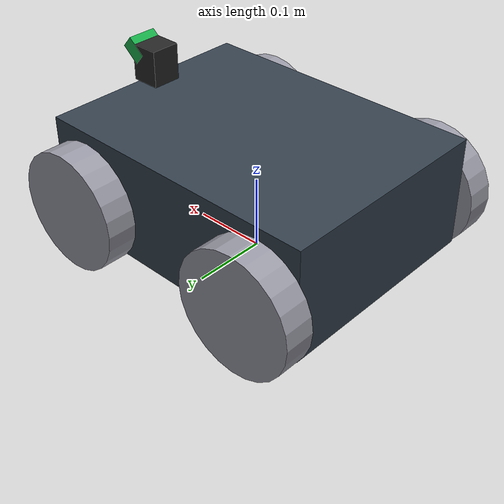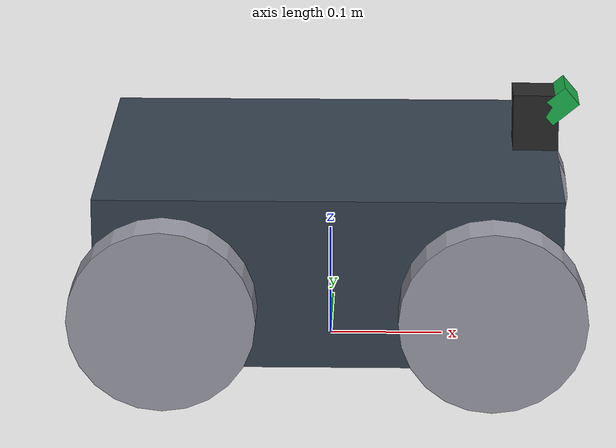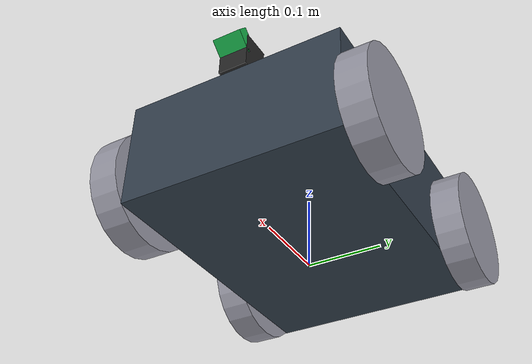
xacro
<?xml version="1.0"?>
<robot xmlns:xacro="http://www.ros.org/wiki/xacro" name="railway_rover">

  <!-- ==================== Materials ==================== -->
  <material name="chassis_color">
    <color rgba="0.2 0.25 0.3 1.0"/>
  </material>

  <material name="wheel_color">
    <color rgba="0.6 0.6 0.65 1.0"/>
  </material>

  <material name="camera_color">
    <color rgba="0.1 0.7 0.3 1.0"/>
  </material>

  <material name="mount_color">
    <color rgba="0.15 0.15 0.15 1.0"/>
  </material>

  <!-- ==================== Base Footprint ==================== -->
  <link name="base_footprint"/>

  <!-- ==================== Base Link (Chassis) ==================== -->
  <joint name="base_joint" type="fixed">
    <parent link="base_footprint"/>
    <child link="base_link"/>
    <origin xyz="0 0 0.10" rpy="0 0 0"/>
  </joint>

  <link name="base_link">
    <visual>
      <origin xyz="0 0 0" rpy="0 0 0"/>
      <geometry>
        <box size="0.40 0.30 0.15"/>
      </geometry>
      <material name="chassis_color"/>
    </visual>
    <collision>
      <origin xyz="0 0 0" rpy="0 0 0"/>
      <geometry>
        <box size="0.40 0.30 0.15"/>
      </geometry>
    </collision>
    <inertial>
      <origin xyz="0 0 0" rpy="0 0 0"/>
      <mass value="5.0"/>
      <inertia ixx="0.0468" ixy="0.0" ixz="0.0" iyy="0.0760" iyz="0.0" izz="0.1041"/>
    </inertial>
  </link>

  <!-- ==================== Wheel Macro ==================== -->
  <xacro:macro name="wheel" params="prefix x_reflect y_reflect">
    <joint name="${prefix}_wheel_joint" type="continuous">
      <parent link="base_link"/>
      <child link="${prefix}_wheel_link"/>
      <origin xyz="${x_reflect * 0.14} ${y_reflect * 0.17} -0.02" rpy="-1.5707963 0 0"/>
      <axis xyz="0 0 1"/>
    </joint>

    <link name="${prefix}_wheel_link">
      <visual>
        <origin xyz="0 0 0" rpy="0 0 0"/>
        <geometry>
          <cylinder radius="0.08" length="0.04"/>
        </geometry>
        <material name="wheel_color"/>
      </visual>
      <collision>
        <origin xyz="0 0 0" rpy="0 0 0"/>
        <geometry>
          <cylinder radius="0.08" length="0.04"/>
        </geometry>
      </collision>
      <inertial>
        <origin xyz="0 0 0" rpy="0 0 0"/>
        <mass value="0.5"/>
        <inertia ixx="0.00086" ixy="0.0" ixz="0.0" iyy="0.00086" iyz="0.0" izz="0.0016"/>
      </inertial>
    </link>
  </xacro:macro>

  <!-- Instantiate 4 Wheels -->
  <xacro:wheel prefix="front_left" x_reflect="1" y_reflect="1"/>
  <xacro:wheel prefix="front_right" x_reflect="1" y_reflect="-1"/>
  <xacro:wheel prefix="rear_left" x_reflect="-1" y_reflect="1"/>
  <xacro:wheel prefix="rear_right" x_reflect="-1" y_reflect="-1"/>

  <!-- ==================== Camera Mount & Link ==================== -->
  <!-- Camera Mount Link (fixed to front-center top of chassis) -->
  <joint name="camera_mount_joint" type="fixed">
    <parent link="base_link"/>
    <child link="camera_mount_link"/>
    <origin xyz="0.18 0.0 0.08" rpy="0 0 0"/>
  </joint>

  <link name="camera_mount_link">
    <visual>
      <origin xyz="0 0 0.025" rpy="0 0 0"/>
      <geometry>
        <box size="0.04 0.04 0.05"/>
      </geometry>
      <material name="mount_color"/>
    </visual>
  </link>

  <!-- Camera Module Joint: Angled at 50 degrees relative to ground (0.872665 rad pitch downward) -->
  <joint name="camera_joint" type="fixed">
    <parent link="camera_mount_link"/>
    <child link="camera_link"/>
    <!-- Pitch angle: 50 deg downward = 0.872665 rad pitch -->
    <origin xyz="0.02 0.0 0.04" rpy="0 0.872665 0"/>
  </joint>

  <link name="camera_link">
    <visual>
      <origin xyz="0 0 0" rpy="0 0 0"/>
      <geometry>
        <box size="0.02 0.04 0.03"/>
      </geometry>
      <material name="camera_color"/>
    </visual>
  </link>

  <!-- ROS Camera Optical Frame standard (X-Right, Y-Down, Z-Forward optical axis) -->
  <joint name="camera_optical_joint" type="fixed">
    <parent link="camera_link"/>
    <child link="camera_optical_frame"/>
    <origin xyz="0 0 0" rpy="-1.5707963 0 -1.5707963"/>
  </joint>

  <link name="camera_optical_frame"/>

</robot>
